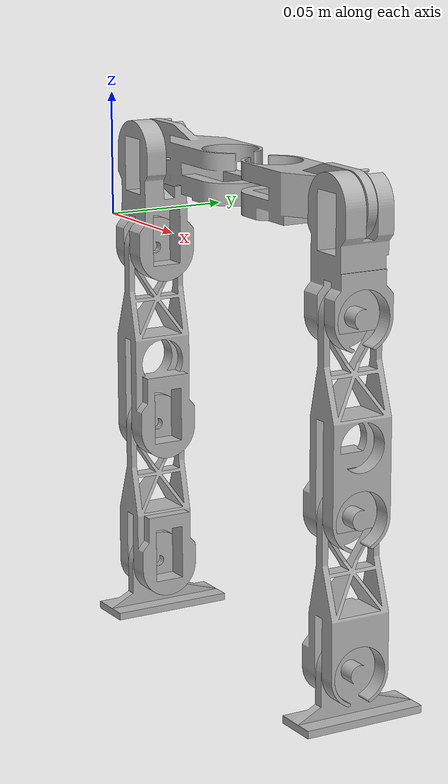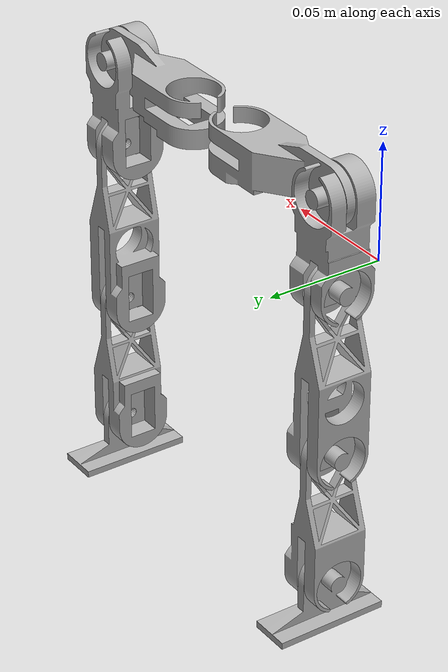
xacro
<?xml version="1.0" ?>
<robot name="BiPedal" xmlns:xacro="http://www.ros.org/wiki/xacro">

<xacro:include filename="$(find BiPedal_description)/urdf/materials.xacro" />
<xacro:include filename="$(find BiPedal_description)/urdf/BiPedal.trans" />
<xacro:include filename="$(find BiPedal_description)/urdf/BiPedal.gazebo" />
<link name="base_link">
  <inertial>
    <origin xyz="0.08586663481755225 0.015200000219473764 0.030346999101520028" rpy="0 0 0"/>
    <mass value="0.008056994181695316"/>
    <inertia ixx="1e-06" iyy="2e-06" izz="2e-06" ixy="-0.0" iyz="-0.0" ixz="0.0"/>
  </inertial>
  <visual>
    <origin xyz="0 0 0" rpy="0 0 0"/>
    <geometry>
      <mesh filename="file://$(find BiPedal_description)/meshes/base_link.stl" scale="0.001 0.001 0.001"/>
    </geometry>
    <material name="silver"/>
  </visual>
  <collision>
    <origin xyz="0 0 0" rpy="0 0 0"/>
    <geometry>
      <mesh filename="file://$(find BiPedal_description)/meshes/base_link.stl" scale="0.001 0.001 0.001"/>
    </geometry>
  </collision>
</link>

<link name="l_limb_1_2">
  <inertial>
    <origin xyz="-0.023970362856175466 -0.00024134710084450575 -0.009362098179452969" rpy="0 0 0"/>
    <mass value="0.01661221123033472"/>
    <inertia ixx="1e-06" iyy="6e-06" izz="6e-06" ixy="-0.0" iyz="0.0" ixz="1e-06"/>
  </inertial>
  <visual>
    <origin xyz="-0.0695 -0.0152 -0.03505" rpy="0 0 0"/>
    <geometry>
      <mesh filename="file://$(find BiPedal_description)/meshes/l_limb_1_2.stl" scale="0.001 0.001 0.001"/>
    </geometry>
    <material name="silver"/>
  </visual>
  <collision>
    <origin xyz="-0.0695 -0.0152 -0.03505" rpy="0 0 0"/>
    <geometry>
      <mesh filename="file://$(find BiPedal_description)/meshes/l_limb_1_2.stl" scale="0.001 0.001 0.001"/>
    </geometry>
  </collision>
</link>

<link name="l_limb_2_1">
  <inertial>
    <origin xyz="0.0006303835963102564 -0.011065776371625417 -0.020068183255934048" rpy="0 0 0"/>
    <mass value="0.01296642071844992"/>
    <inertia ixx="4e-06" iyy="4e-06" izz="1e-06" ixy="-0.0" iyz="0.0" ixz="0.0"/>
  </inertial>
  <visual>
    <origin xyz="-0.0125 -0.02285 -0.02715" rpy="0 0 0"/>
    <geometry>
      <mesh filename="file://$(find BiPedal_description)/meshes/l_limb_2_1.stl" scale="0.001 0.001 0.001"/>
    </geometry>
    <material name="silver"/>
  </visual>
  <collision>
    <origin xyz="-0.0125 -0.02285 -0.02715" rpy="0 0 0"/>
    <geometry>
      <mesh filename="file://$(find BiPedal_description)/meshes/l_limb_2_1.stl" scale="0.001 0.001 0.001"/>
    </geometry>
  </collision>
</link>

<link name="l_limb_3_1">
  <inertial>
    <origin xyz="0.009804991960905243 -7.840550231633103e-09 -0.0462455041341746" rpy="0 0 0"/>
    <mass value="0.013303650970471134"/>
    <inertia ixx="1.1e-05" iyy="1e-05" izz="1e-06" ixy="0.0" iyz="0.0" ixz="1e-06"/>
  </inertial>
  <visual>
    <origin xyz="-0.00245 -0.01225 0.013" rpy="0 0 0"/>
    <geometry>
      <mesh filename="file://$(find BiPedal_description)/meshes/l_limb_3_1.stl" scale="0.001 0.001 0.001"/>
    </geometry>
    <material name="silver"/>
  </visual>
  <collision>
    <origin xyz="-0.00245 -0.01225 0.013" rpy="0 0 0"/>
    <geometry>
      <mesh filename="file://$(find BiPedal_description)/meshes/l_limb_3_1.stl" scale="0.001 0.001 0.001"/>
    </geometry>
  </collision>
</link>

<link name="l_limb_4_1">
  <inertial>
    <origin xyz="0.009945091460854778 7.071281254988904e-09 -0.03753649448055185" rpy="0 0 0"/>
    <mass value="0.01200848860811485"/>
    <inertia ixx="7e-06" iyy="6e-06" izz="1e-06" ixy="0.0" iyz="-0.0" ixz="0.0"/>
  </inertial>
  <visual>
    <origin xyz="-0.00245 -0.01225 0.088" rpy="0 0 0"/>
    <geometry>
      <mesh filename="file://$(find BiPedal_description)/meshes/l_limb_4_1.stl" scale="0.001 0.001 0.001"/>
    </geometry>
    <material name="silver"/>
  </visual>
  <collision>
    <origin xyz="-0.00245 -0.01225 0.088" rpy="0 0 0"/>
    <geometry>
      <mesh filename="file://$(find BiPedal_description)/meshes/l_limb_4_1.stl" scale="0.001 0.001 0.001"/>
    </geometry>
  </collision>
</link>

<link name="l_limb_5_1">
  <inertial>
    <origin xyz="0.008690097127208904 0.0014296750228966221 -0.011008207091126126" rpy="0 0 0"/>
    <mass value="0.006343438229127173"/>
    <inertia ixx="1e-06" iyy="1e-06" izz="1e-06" ixy="-0.0" iyz="0.0" ixz="0.0"/>
  </inertial>
  <visual>
    <origin xyz="-0.00245 -0.01225 0.148" rpy="0 0 0"/>
    <geometry>
      <mesh filename="file://$(find BiPedal_description)/meshes/l_limb_5_1.stl" scale="0.001 0.001 0.001"/>
    </geometry>
    <material name="silver"/>
  </visual>
  <collision>
    <origin xyz="-0.00245 -0.01225 0.148" rpy="0 0 0"/>
    <geometry>
      <mesh filename="file://$(find BiPedal_description)/meshes/l_limb_5_1.stl" scale="0.001 0.001 0.001"/>
    </geometry>
  </collision>
</link>

<link name="r_limb_1_2">
  <inertial>
    <origin xyz="0.023970639297027932 -0.00024134710084450575 -0.009362098179452969" rpy="0 0 0"/>
    <mass value="0.01661221123033472"/>
    <inertia ixx="1e-06" iyy="6e-06" izz="6e-06" ixy="0.0" iyz="0.0" ixz="-1e-06"/>
  </inertial>
  <visual>
    <origin xyz="-0.102233 -0.0152 -0.03505" rpy="0 0 0"/>
    <geometry>
      <mesh filename="file://$(find BiPedal_description)/meshes/r_limb_1_2.stl" scale="0.001 0.001 0.001"/>
    </geometry>
    <material name="silver"/>
  </visual>
  <collision>
    <origin xyz="-0.102233 -0.0152 -0.03505" rpy="0 0 0"/>
    <geometry>
      <mesh filename="file://$(find BiPedal_description)/meshes/r_limb_1_2.stl" scale="0.001 0.001 0.001"/>
    </geometry>
  </collision>
</link>

<link name="r_limb_2_1">
  <inertial>
    <origin xyz="-0.0006301139612049922 -0.01106577637162541 -0.020068183255934065" rpy="0 0 0"/>
    <mass value="0.01296642071844992"/>
    <inertia ixx="4e-06" iyy="4e-06" izz="1e-06" ixy="0.0" iyz="0.0" ixz="-0.0"/>
  </inertial>
  <visual>
    <origin xyz="-0.159233 -0.02285 -0.02715" rpy="0 0 0"/>
    <geometry>
      <mesh filename="file://$(find BiPedal_description)/meshes/r_limb_2_1.stl" scale="0.001 0.001 0.001"/>
    </geometry>
    <material name="silver"/>
  </visual>
  <collision>
    <origin xyz="-0.159233 -0.02285 -0.02715" rpy="0 0 0"/>
    <geometry>
      <mesh filename="file://$(find BiPedal_description)/meshes/r_limb_2_1.stl" scale="0.001 0.001 0.001"/>
    </geometry>
  </collision>
</link>

<link name="r_limb_3_1">
  <inertial>
    <origin xyz="-0.00980471777042366 6.339790215373342e-09 -0.046245591376428495" rpy="0 0 0"/>
    <mass value="0.013303625772639282"/>
    <inertia ixx="1.1e-05" iyy="1e-05" izz="1e-06" ixy="-0.0" iyz="-0.0" ixz="-1e-06"/>
  </inertial>
  <visual>
    <origin xyz="-0.169283 -0.01225 0.013" rpy="0 0 0"/>
    <geometry>
      <mesh filename="file://$(find BiPedal_description)/meshes/r_limb_3_1.stl" scale="0.001 0.001 0.001"/>
    </geometry>
    <material name="silver"/>
  </visual>
  <collision>
    <origin xyz="-0.169283 -0.01225 0.013" rpy="0 0 0"/>
    <geometry>
      <mesh filename="file://$(find BiPedal_description)/meshes/r_limb_3_1.stl" scale="0.001 0.001 0.001"/>
    </geometry>
  </collision>
</link>

<link name="r_limb_4_1">
  <inertial>
    <origin xyz="-0.009944821825750433 -6.698752063466484e-09 -0.03753649448055171" rpy="0 0 0"/>
    <mass value="0.012008488608114851"/>
    <inertia ixx="7e-06" iyy="6e-06" izz="1e-06" ixy="0.0" iyz="0.0" ixz="-0.0"/>
  </inertial>
  <visual>
    <origin xyz="-0.169283 -0.01225 0.088" rpy="0 0 0"/>
    <geometry>
      <mesh filename="file://$(find BiPedal_description)/meshes/r_limb_4_1.stl" scale="0.001 0.001 0.001"/>
    </geometry>
    <material name="silver"/>
  </visual>
  <collision>
    <origin xyz="-0.169283 -0.01225 0.088" rpy="0 0 0"/>
    <geometry>
      <mesh filename="file://$(find BiPedal_description)/meshes/r_limb_4_1.stl" scale="0.001 0.001 0.001"/>
    </geometry>
  </collision>
</link>

<link name="r_limb_5_1">
  <inertial>
    <origin xyz="-0.008689827492104452 0.0014296750228965892 -0.011008207091125932" rpy="0 0 0"/>
    <mass value="0.006343438229127177"/>
    <inertia ixx="1e-06" iyy="1e-06" izz="1e-06" ixy="0.0" iyz="0.0" ixz="-0.0"/>
  </inertial>
  <visual>
    <origin xyz="-0.169283 -0.01225 0.148" rpy="0 0 0"/>
    <geometry>
      <mesh filename="file://$(find BiPedal_description)/meshes/r_limb_5_1.stl" scale="0.001 0.001 0.001"/>
    </geometry>
    <material name="silver"/>
  </visual>
  <collision>
    <origin xyz="-0.169283 -0.01225 0.148" rpy="0 0 0"/>
    <geometry>
      <mesh filename="file://$(find BiPedal_description)/meshes/r_limb_5_1.stl" scale="0.001 0.001 0.001"/>
    </geometry>
  </collision>
</link>

<joint name="l_limb_1_to_base_link" type="revolute">
  <origin xyz="0.0695 0.0152 0.03505" rpy="0 0 0"/>
  <parent link="base_link"/>
  <child link="l_limb_1_2"/>
  <axis xyz="-0.0 -0.0 1.0"/>
  <limit upper="1.570796" lower="-1.570796" effort="100" velocity="100"/>
</joint>

<joint name="l_limb_2_to_limb_1" type="revolute">
  <origin xyz="-0.057 0.00765 -0.0079" rpy="0 0 0"/>
  <parent link="l_limb_1_2"/>
  <child link="l_limb_2_1"/>
  <axis xyz="-0.0 1.0 0.0"/>
  <limit upper="1.570796" lower="-0.261799" effort="100" velocity="100"/>
</joint>

<joint name="l_limb_3_to_limb_2" type="revolute">
  <origin xyz="-0.01005 -0.0106 -0.04015" rpy="0 0 0"/>
  <parent link="l_limb_2_1"/>
  <child link="l_limb_3_1"/>
  <axis xyz="1.0 0.0 0.0"/>
  <limit upper="1.570796" lower="-1.570796" effort="100" velocity="100"/>
</joint>

<joint name="l_limb_4_to_limb_3" type="revolute">
  <origin xyz="0.0 0.0 -0.075" rpy="0 0 0"/>
  <parent link="l_limb_3_1"/>
  <child link="l_limb_4_1"/>
  <axis xyz="1.0 0.0 0.0"/>
  <limit upper="1.570796" lower="-1.570796" effort="100" velocity="100"/>
</joint>

<joint name="l_limb_5_to_limb_4" type="revolute">
  <origin xyz="0.0 0.0 -0.06" rpy="0 0 0"/>
  <parent link="l_limb_4_1"/>
  <child link="l_limb_5_1"/>
  <axis xyz="1.0 0.0 0.0"/>
  <limit upper="1.570796" lower="-1.570796" effort="100" velocity="100"/>
</joint>

<joint name="r_limb_1_to_base_link" type="revolute">
  <origin xyz="0.102233 0.0152 0.03505" rpy="0 0 0"/>
  <parent link="base_link"/>
  <child link="r_limb_1_2"/>
  <axis xyz="0.0 -0.0 1.0"/>
  <limit upper="1.570796" lower="-1.570796" effort="100" velocity="100"/>
</joint>

<joint name="r_limb_2_to_limb_1" type="revolute">
  <origin xyz="0.057 0.00765 -0.0079" rpy="0 0 0"/>
  <parent link="r_limb_1_2"/>
  <child link="r_limb_2_1"/>
  <axis xyz="0.0 1.0 0.0"/>
  <limit upper="0.261799" lower="-1.396263" effort="100" velocity="100"/>
</joint>

<joint name="r_limb_3_to_limb_2" type="revolute">
  <origin xyz="0.01005 -0.0106 -0.04015" rpy="0 0 0"/>
  <parent link="r_limb_2_1"/>
  <child link="r_limb_3_1"/>
  <axis xyz="1.0 -0.0 -0.0"/>
  <limit upper="1.570796" lower="-1.570796" effort="100" velocity="100"/>
</joint>

<joint name="r_limb_4_to_limb_3" type="revolute">
  <origin xyz="0.0 0.0 -0.075" rpy="0 0 0"/>
  <parent link="r_limb_3_1"/>
  <child link="r_limb_4_1"/>
  <axis xyz="1.0 -0.0 -0.0"/>
  <limit upper="1.570796" lower="-1.570796" effort="100" velocity="100"/>
</joint>

<joint name="r_limb_5_to_limb_4" type="revolute">
  <origin xyz="0.0 0.0 -0.06" rpy="0 0 0"/>
  <parent link="r_limb_4_1"/>
  <child link="r_limb_5_1"/>
  <axis xyz="-1.0 0.0 0.0"/>
  <limit upper="1.570796" lower="-1.570796" effort="100" velocity="100"/>
</joint>

</robot>

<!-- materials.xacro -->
<robot name="BiPedal" xmlns:xacro="http://www.ros.org/wiki/xacro" >

<material name="silver">
  <color rgba="0.700 0.700 0.700 1.000"/>
</material>

</robot>

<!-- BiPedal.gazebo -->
<robot name="BiPedal" xmlns:xacro="http://www.ros.org/wiki/xacro" >

<xacro:property name="body_color" value="Gazebo/Silver" />

<gazebo>
  <plugin name="control" filename="libgazebo_ros_control.so"/>
</gazebo>
<gazebo reference="base_link">
  <material>${body_color}</material>
  <mu1>0.2</mu1>
  <mu2>0.2</mu2>
  <self_collide>true</self_collide>
  <gravity>true</gravity>
</gazebo>

<gazebo reference="l_limb_1_2">
  <material>${body_color}</material>
  <mu1>0.2</mu1>
  <mu2>0.2</mu2>
  <self_collide>true</self_collide>
</gazebo>

<gazebo reference="l_limb_2_1">
  <material>${body_color}</material>
  <mu1>0.2</mu1>
  <mu2>0.2</mu2>
  <self_collide>true</self_collide>
</gazebo>

<gazebo reference="l_limb_3_1">
  <material>${body_color}</material>
  <mu1>0.2</mu1>
  <mu2>0.2</mu2>
  <self_collide>true</self_collide>
</gazebo>

<gazebo reference="l_limb_4_1">
  <material>${body_color}</material>
  <mu1>0.2</mu1>
  <mu2>0.2</mu2>
  <self_collide>true</self_collide>
</gazebo>

<gazebo reference="l_limb_5_1">
  <material>${body_color}</material>
  <mu1>0.2</mu1>
  <mu2>0.2</mu2>
  <self_collide>true</self_collide>
</gazebo>

<gazebo reference="r_limb_1_2">
  <material>${body_color}</material>
  <mu1>0.2</mu1>
  <mu2>0.2</mu2>
  <self_collide>true</self_collide>
</gazebo>

<gazebo reference="r_limb_2_1">
  <material>${body_color}</material>
  <mu1>0.2</mu1>
  <mu2>0.2</mu2>
  <self_collide>true</self_collide>
</gazebo>

<gazebo reference="r_limb_3_1">
  <material>${body_color}</material>
  <mu1>0.2</mu1>
  <mu2>0.2</mu2>
  <self_collide>true</self_collide>
</gazebo>

<gazebo reference="r_limb_4_1">
  <material>${body_color}</material>
  <mu1>0.2</mu1>
  <mu2>0.2</mu2>
  <self_collide>true</self_collide>
</gazebo>

<gazebo reference="r_limb_5_1">
  <material>${body_color}</material>
  <mu1>0.2</mu1>
  <mu2>0.2</mu2>
  <self_collide>true</self_collide>
</gazebo>

</robot>
